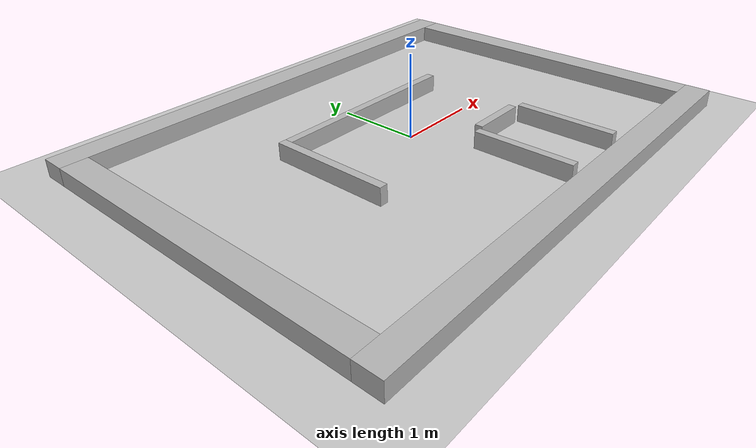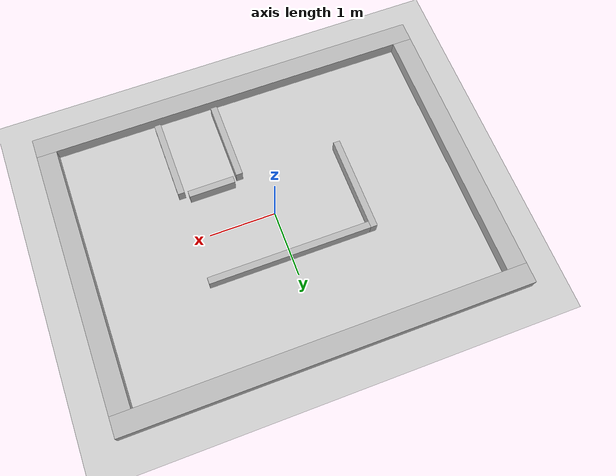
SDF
<?xml version="1.0" ?>
<sdf version="1.4">

	<world name="default">

		<scene>

			<ambient>0.4 0.4 0.4 1</ambient>

			<background>0.7 0.7 0.7 1</background>

			<shadows>true</shadows>

		</scene>

		<!-- A global light source -->

		<include>

			<uri>model://sun</uri>

		</include>

		<!-- A ground plane -->

		<include>

			<uri>model://ground_plane</uri>

		</include>

		<physics type="ode">

			<real_time_update_rate>1000.0</real_time_update_rate>

			<max_step_size>0.001</max_step_size>

			<real_time_factor>1</real_time_factor>

			<ode>

				<solver>

					<type>quick</type>

					<iters>150</iters>

					<precon_iters>0</precon_iters>

					<sor>1.400000</sor>

					<use_dynamic_moi_rescaling>1</use_dynamic_moi_rescaling>

				</solver>

				<constraints>

					<cfm>0.00001</cfm>

					<erp>0.2</erp>

					<contact_max_correcting_vel>2000.000000</contact_max_correcting_vel>

					<contact_surface_layer>0.01000</contact_surface_layer>

				</constraints>

			</ode>

		</physics>

		<model name="rect-0-back">
			<pose>0.0 2.1500000000000004 0.0 0.0 0.0 0.0 </pose>
			<link name="link-rect-0-back">
				<collision name="collision-rect-0-back">
					<geometry>
						<box>
							<size>6.1000000000000005 0.3 0.4 </size>
						</box>
					</geometry>
				</collision>
				<visual name="visual-rect-0-back">
					<geometry>
						<box>
							<size>6.1000000000000005 0.3 0.4 </size>
						</box>
					</geometry>
				</visual>
			</link>
		</model>
		<model name="rect-0-front">
			<pose>0.0 -2.1500000000000004 0.0 0.0 0.0 0.0 </pose>
			<link name="link-rect-0-front">
				<collision name="collision-rect-0-front">
					<geometry>
						<box>
							<size>6.1000000000000005 0.3 0.4 </size>
						</box>
					</geometry>
				</collision>
				<visual name="visual-rect-0-front">
					<geometry>
						<box>
							<size>6.1000000000000005 0.3 0.4 </size>
						</box>
					</geometry>
				</visual>
			</link>
		</model>
		<model name="rect-0-left">
			<pose>-2.9 0.0 0.0 0.0 0.0 1.5707963267948966 </pose>
			<link name="link-rect-0-left">
				<collision name="collision-rect-0-left">
					<geometry>
						<box>
							<size>4.0 0.3 0.4 </size>
						</box>
					</geometry>
				</collision>
				<visual name="visual-rect-0-left">
					<geometry>
						<box>
							<size>4.0 0.3 0.4 </size>
						</box>
					</geometry>
				</visual>
			</link>
		</model>
		<model name="rect-0-right">
			<pose>2.9000000000000004 0.0 0.0 0.0 0.0 1.5707963267948966 </pose>
			<link name="link-rect-0-right">
				<collision name="collision-rect-0-right">
					<geometry>
						<box>
							<size>4.0 0.3 0.4 </size>
						</box>
					</geometry>
				</collision>
				<visual name="visual-rect-0-right">
					<geometry>
						<box>
							<size>4.0 0.3 0.4 </size>
						</box>
					</geometry>
				</visual>
			</link>
		</model>
		<model name="line-0">
			<pose>0.025000000000000355 0.7000000000000002 0.0 0.0 0.0 0.0 </pose>
			<link name="link-line-0">
				<collision name="collision-line-0">
					<geometry>
						<box>
							<size>2.45 0.1 0.4 </size>
						</box>
					</geometry>
				</collision>
				<visual name="visual-line-0">
					<geometry>
						<box>
							<size>2.45 0.1 0.4 </size>
						</box>
					</geometry>
				</visual>
			</link>
		</model>
		<model name="line-1">
			<pose>-1.25 0.02499999999999991 0.0 0.0 0.0 1.5707963267948966 </pose>
			<link name="link-line-1">
				<collision name="collision-line-1">
					<geometry>
						<box>
							<size>1.4500000000000002 0.1 0.4 </size>
						</box>
					</geometry>
				</collision>
				<visual name="visual-line-1">
					<geometry>
						<box>
							<size>1.4500000000000002 0.1 0.4 </size>
						</box>
					</geometry>
				</visual>
			</link>
		</model>
		<model name="line-2">
			<pose>0.75 -0.6500000000000004 0.0 0.0 0.0 0.0 </pose>
			<link name="link-line-2">
				<collision name="collision-line-2">
					<geometry>
						<box>
							<size>0.6999999999999993 0.1 0.4 </size>
						</box>
					</geometry>
				</collision>
				<visual name="visual-line-2">
					<geometry>
						<box>
							<size>0.6999999999999993 0.1 0.4 </size>
						</box>
					</geometry>
				</visual>
			</link>
		</model>
		<model name="line-3">
			<pose>0.2999999999999998 -1.3000000000000003 0.0 0.0 0.0 1.5707963267948966 </pose>
			<link name="link-line-3">
				<collision name="collision-line-3">
					<geometry>
						<box>
							<size>1.2000000000000002 0.1 0.4 </size>
						</box>
					</geometry>
				</collision>
				<visual name="visual-line-3">
					<geometry>
						<box>
							<size>1.2000000000000002 0.1 0.4 </size>
						</box>
					</geometry>
				</visual>
			</link>
		</model>
		<model name="line-4">
			<pose>1.2000000000000002 -1.3000000000000003 0.0 0.0 0.0 1.5707963267948966 </pose>
			<link name="link-line-4">
				<collision name="collision-line-4">
					<geometry>
						<box>
							<size>1.2000000000000002 0.1 0.4 </size>
						</box>
					</geometry>
				</collision>
				<visual name="visual-line-4">
					<geometry>
						<box>
							<size>1.2000000000000002 0.1 0.4 </size>
						</box>
					</geometry>
				</visual>
			</link>
		</model>
	</world>

</sdf>
